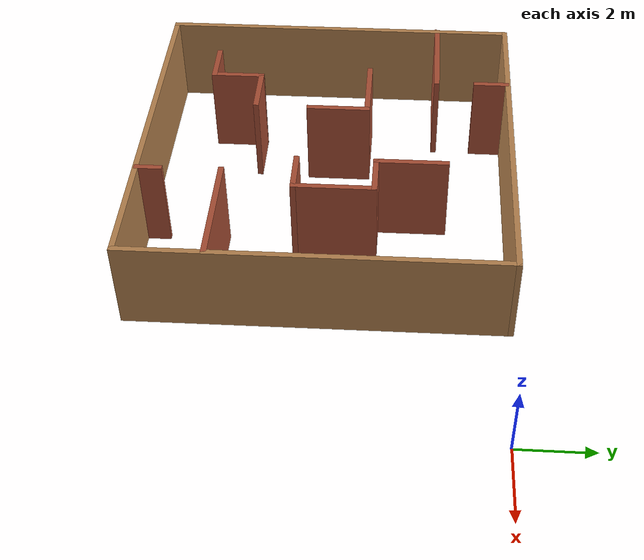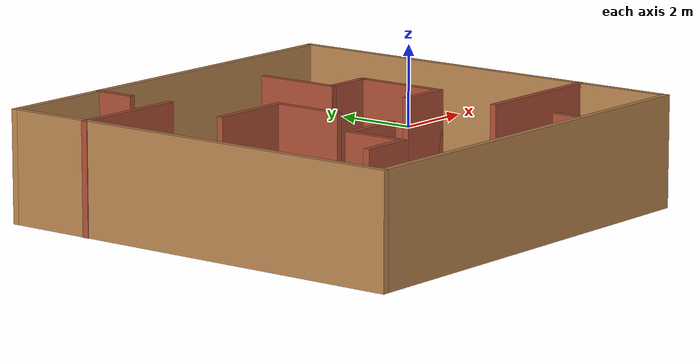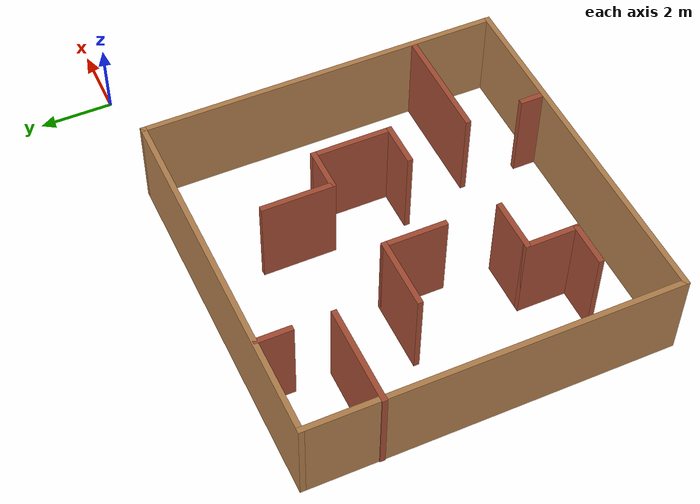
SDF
<?xml version='1.0'?>
<sdf version='1.7'>
  <model name='3'>
    <pose>-6.76614 -4.81286 0 0 -0 0</pose>
    <link name='Wall_10'>
      <collision name='Wall_10_Collision'>
        <geometry>
          <box>
            <size>10 0.15 2.5</size>
          </box>
        </geometry>
        <pose>0 0 1.25 0 -0 0</pose>
      </collision>
      <visual name='Wall_10_Visual'>
        <pose>0 0 1.25 0 -0 0</pose>
        <geometry>
          <box>
            <size>10 0.15 2.5</size>
          </box>
        </geometry>
        <material>
          <script>
            <uri>file://media/materials/scripts/gazebo.material</uri>
            <name>Gazebo/Wood</name>
          </script>
          <ambient>1 1 1 1</ambient>
        </material>
        <meta>
          <layer>0</layer>
        </meta>
      </visual>
      <pose>3.18199 0 0 0 -0 1.5708</pose>
    </link>
    <link name='Wall_11'>
      <collision name='Wall_11_Collision'>
        <geometry>
          <box>
            <size>10 0.15 2.5</size>
          </box>
        </geometry>
        <pose>0 0 1.25 0 -0 0</pose>
      </collision>
      <visual name='Wall_11_Visual'>
        <pose>0 0 1.25 0 -0 0</pose>
        <geometry>
          <box>
            <size>10 0.15 2.5</size>
          </box>
        </geometry>
        <material>
          <script>
            <uri>file://media/materials/scripts/gazebo.material</uri>
            <name>Gazebo/Wood</name>
          </script>
          <ambient>1 1 1 1</ambient>
        </material>
        <meta>
          <layer>0</layer>
        </meta>
      </visual>
      <pose>-1.74301 4.925 0 0 -0 3.14159</pose>
    </link>
    <link name='Wall_12'>
      <collision name='Wall_12_Collision'>
        <geometry>
          <box>
            <size>10 0.15 2.5</size>
          </box>
        </geometry>
        <pose>0 0 1.25 0 -0 0</pose>
      </collision>
      <visual name='Wall_12_Visual'>
        <pose>0 0 1.25 0 -0 0</pose>
        <geometry>
          <box>
            <size>10 0.15 2.5</size>
          </box>
        </geometry>
        <material>
          <script>
            <uri>file://media/materials/scripts/gazebo.material</uri>
            <name>Gazebo/Wood</name>
          </script>
          <ambient>1 1 1 1</ambient>
        </material>
        <meta>
          <layer>0</layer>
        </meta>
      </visual>
      <pose>-6.66801 0 0 0 -0 -1.5708</pose>
    </link>
    <link name='Wall_17'>
      <collision name='Wall_17_Collision'>
        <geometry>
          <box>
            <size>2.75 0.15 2.5</size>
          </box>
        </geometry>
        <pose>0 0 1.25 0 -0 0</pose>
      </collision>
      <visual name='Wall_17_Visual'>
        <pose>0 0 1.25 0 -0 0</pose>
        <geometry>
          <box>
            <size>2.75 0.15 2.5</size>
          </box>
        </geometry>
        <material>
          <script>
            <uri>file://media/materials/scripts/gazebo.material</uri>
            <name>Gazebo/Bricks</name>
          </script>
          <ambient>1 1 1 1</ambient>
        </material>
        <meta>
          <layer>0</layer>
        </meta>
      </visual>
      <pose>-5.39114 2.91628 0 0 -0 0</pose>
    </link>
    <link name='Wall_22'>
      <collision name='Wall_22_Collision'>
        <geometry>
          <box>
            <size>1 0.15 2.5</size>
          </box>
        </geometry>
        <pose>0 0 1.25 0 -0 0</pose>
      </collision>
      <visual name='Wall_22_Visual'>
        <pose>0 0 1.25 0 -0 0</pose>
        <geometry>
          <box>
            <size>1 0.15 2.5</size>
          </box>
        </geometry>
        <material>
          <script>
            <uri>file://media/materials/scripts/gazebo.material</uri>
            <name>Gazebo/Bricks</name>
          </script>
          <ambient>1 1 1 1</ambient>
        </material>
        <meta>
          <layer>0</layer>
        </meta>
      </visual>
      <pose>-4.07738 4.45738 0 0 -0 -1.5708</pose>
    </link>
    <link name='Wall_24'>
      <collision name='Wall_24_Collision'>
        <geometry>
          <box>
            <size>3.25 0.15 2.5</size>
          </box>
        </geometry>
        <pose>0 0 1.25 0 -0 0</pose>
      </collision>
      <visual name='Wall_24_Visual'>
        <pose>0 0 1.25 0 -0 0</pose>
        <geometry>
          <box>
            <size>3.25 0.15 2.5</size>
          </box>
        </geometry>
        <material>
          <script>
            <uri>file://media/materials/scripts/gazebo.material</uri>
            <name>Gazebo/Bricks</name>
          </script>
          <ambient>1 1 1 1</ambient>
        </material>
        <meta>
          <layer>0</layer>
        </meta>
      </visual>
      <pose>1.6125 -2.68133 0 0 -0 3.14159</pose>
    </link>
    <link name='Wall_26'>
      <collision name='Wall_26_Collision'>
        <geometry>
          <box>
            <size>0.75 0.15 2.5</size>
          </box>
        </geometry>
        <pose>0 0 1.25 0 -0 0</pose>
      </collision>
      <visual name='Wall_26_Visual'>
        <pose>0 0 1.25 0 -0 0</pose>
        <geometry>
          <box>
            <size>0.75 0.15 2.5</size>
          </box>
        </geometry>
        <material>
          <script>
            <uri>file://media/materials/scripts/gazebo.material</uri>
            <name>Gazebo/Bricks</name>
          </script>
          <ambient>1 1 1 1</ambient>
        </material>
        <meta>
          <layer>0</layer>
        </meta>
      </visual>
      <pose>0.086128 -4.60187 0 0 -0 1.5708</pose>
    </link>
    <link name='Wall_29'>
      <collision name='Wall_29_Collision'>
        <geometry>
          <box>
            <size>2 0.15 2.5</size>
          </box>
        </geometry>
        <pose>0 0 1.25 0 -0 0</pose>
      </collision>
      <visual name='Wall_29_Visual'>
        <pose>0 0 1.25 0 -0 0</pose>
        <geometry>
          <box>
            <size>2 0.15 2.5</size>
          </box>
        </geometry>
        <material>
          <script>
            <uri>file://media/materials/scripts/gazebo.material</uri>
            <name>Gazebo/Bricks</name>
          </script>
          <ambient>1 1 1 1</ambient>
        </material>
        <meta>
          <layer>0</layer>
        </meta>
      </visual>
      <pose>-3.66126 0.996435 0 0 -0 0</pose>
    </link>
    <link name='Wall_30'>
      <collision name='Wall_30_Collision'>
        <geometry>
          <box>
            <size>1.75 0.15 2.5</size>
          </box>
        </geometry>
        <pose>0 0 1.25 0 -0 0</pose>
      </collision>
      <visual name='Wall_30_Visual'>
        <pose>0 0 1.25 0 -0 0</pose>
        <geometry>
          <box>
            <size>1.75 0.15 2.5</size>
          </box>
        </geometry>
        <material>
          <script>
            <uri>file://media/materials/scripts/gazebo.material</uri>
            <name>Gazebo/Bricks</name>
          </script>
          <ambient>1 1 1 1</ambient>
        </material>
        <meta>
          <layer>0</layer>
        </meta>
      </visual>
      <pose>-2.73625 0.196435 0 0 -0 -1.5708</pose>
    </link>
    <link name='Wall_32'>
      <collision name='Wall_32_Collision'>
        <geometry>
          <box>
            <size>1.25 0.15 2.5</size>
          </box>
        </geometry>
        <pose>0 0 1.25 0 -0 0</pose>
      </collision>
      <visual name='Wall_32_Visual'>
        <pose>0 0 1.25 0 -0 0</pose>
        <geometry>
          <box>
            <size>1.25 0.15 2.5</size>
          </box>
        </geometry>
        <material>
          <script>
            <uri>file://media/materials/scripts/gazebo.material</uri>
            <name>Gazebo/Bricks</name>
          </script>
          <ambient>1 1 1 1</ambient>
        </material>
        <meta>
          <layer>0</layer>
        </meta>
      </visual>
      <pose>-4.70704 -3.44464 0 0 -0 0</pose>
    </link>
    <link name='Wall_33'>
      <collision name='Wall_33_Collision'>
        <geometry>
          <box>
            <size>1.5 0.15 2.5</size>
          </box>
        </geometry>
        <pose>0 0 1.25 0 -0 0</pose>
      </collision>
      <visual name='Wall_33_Visual'>
        <pose>0 0 1.25 0 -0 0</pose>
        <geometry>
          <box>
            <size>1.5 0.15 2.5</size>
          </box>
        </geometry>
        <material>
          <script>
            <uri>file://media/materials/scripts/gazebo.material</uri>
            <name>Gazebo/Bricks</name>
          </script>
          <ambient>1 1 1 1</ambient>
        </material>
        <meta>
          <layer>0</layer>
        </meta>
      </visual>
      <pose>-4.15704 -2.76964 0 0 -0 1.5708</pose>
    </link>
    <link name='Wall_34'>
      <collision name='Wall_34_Collision'>
        <geometry>
          <box>
            <size>1.5 0.15 2.5</size>
          </box>
        </geometry>
        <pose>0 0 1.25 0 -0 0</pose>
      </collision>
      <visual name='Wall_34_Visual'>
        <pose>0 0 1.25 0 -0 0</pose>
        <geometry>
          <box>
            <size>1.5 0.15 2.5</size>
          </box>
        </geometry>
        <material>
          <script>
            <uri>file://media/materials/scripts/gazebo.material</uri>
            <name>Gazebo/Bricks</name>
          </script>
          <ambient>1 1 1 1</ambient>
        </material>
        <meta>
          <layer>0</layer>
        </meta>
      </visual>
      <pose>-3.48204 -2.09464 0 0 -0 0</pose>
    </link>
    <link name='Wall_36'>
      <collision name='Wall_36_Collision'>
        <geometry>
          <box>
            <size>2 0.15 2.5</size>
          </box>
        </geometry>
        <pose>0 0 1.25 0 -0 0</pose>
      </collision>
      <visual name='Wall_36_Visual'>
        <pose>0 0 1.25 0 -0 0</pose>
        <geometry>
          <box>
            <size>2 0.15 2.5</size>
          </box>
        </geometry>
        <material>
          <script>
            <uri>file://media/materials/scripts/gazebo.material</uri>
            <name>Gazebo/Bricks</name>
          </script>
          <ambient>1 1 1 1</ambient>
        </material>
        <meta>
          <layer>0</layer>
        </meta>
      </visual>
      <pose>-0.492137 2.26884 0 0 -0 -1.5708</pose>
    </link>
    <link name='Wall_37'>
      <collision name='Wall_37_Collision'>
        <geometry>
          <box>
            <size>1.25 0.15 2.5</size>
          </box>
        </geometry>
        <pose>0 0 1.25 0 -0 0</pose>
      </collision>
      <visual name='Wall_37_Visual'>
        <pose>0 0 1.25 0 -0 0</pose>
        <geometry>
          <box>
            <size>1.25 0.15 2.5</size>
          </box>
        </geometry>
        <material>
          <script>
            <uri>file://media/materials/scripts/gazebo.material</uri>
            <name>Gazebo/Bricks</name>
          </script>
          <ambient>1 1 1 1</ambient>
        </material>
        <meta>
          <layer>0</layer>
        </meta>
      </visual>
      <pose>0.057863 1.34384 0 0 -0 0</pose>
    </link>
    <link name='Wall_38'>
      <collision name='Wall_38_Collision'>
        <geometry>
          <box>
            <size>2.25 0.15 2.5</size>
          </box>
        </geometry>
        <pose>0 0 1.25 0 -0 0</pose>
      </collision>
      <visual name='Wall_38_Visual'>
        <pose>0 0 1.25 0 -0 0</pose>
        <geometry>
          <box>
            <size>2.25 0.15 2.5</size>
          </box>
        </geometry>
        <material>
          <script>
            <uri>file://media/materials/scripts/gazebo.material</uri>
            <name>Gazebo/Bricks</name>
          </script>
          <ambient>1 1 1 1</ambient>
        </material>
        <meta>
          <layer>0</layer>
        </meta>
      </visual>
      <pose>0.607863 0.293843 0 0 -0 -1.5708</pose>
    </link>
    <link name='Wall_39'>
      <collision name='Wall_39_Collision'>
        <geometry>
          <box>
            <size>1.25 0.15 2.5</size>
          </box>
        </geometry>
        <pose>0 0 1.25 0 -0 0</pose>
      </collision>
      <visual name='Wall_39_Visual'>
        <pose>0 0 1.25 0 -0 0</pose>
        <geometry>
          <box>
            <size>1.25 0.15 2.5</size>
          </box>
        </geometry>
        <material>
          <script>
            <uri>file://media/materials/scripts/gazebo.material</uri>
            <name>Gazebo/Bricks</name>
          </script>
          <ambient>1 1 1 1</ambient>
        </material>
        <meta>
          <layer>0</layer>
        </meta>
      </visual>
      <pose>0.057863 -0.756157 0 0 -0 3.14159</pose>
    </link>
    <link name='Wall_9'>
      <collision name='Wall_9_Collision'>
        <geometry>
          <box>
            <size>10 0.15 2.5</size>
          </box>
        </geometry>
        <pose>0 0 1.25 0 -0 0</pose>
      </collision>
      <visual name='Wall_9_Visual'>
        <pose>0 0 1.25 0 -0 0</pose>
        <geometry>
          <box>
            <size>10 0.15 2.5</size>
          </box>
        </geometry>
        <material>
          <script>
            <uri>file://media/materials/scripts/gazebo.material</uri>
            <name>Gazebo/Wood</name>
          </script>
          <ambient>1 1 1 1</ambient>
        </material>
        <meta>
          <layer>0</layer>
        </meta>
      </visual>
      <pose>-1.74301 -4.925 0 0 -0 0</pose>
    </link>
    <static>1</static>
  </model>
</sdf>
